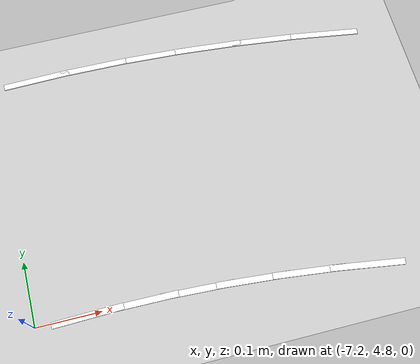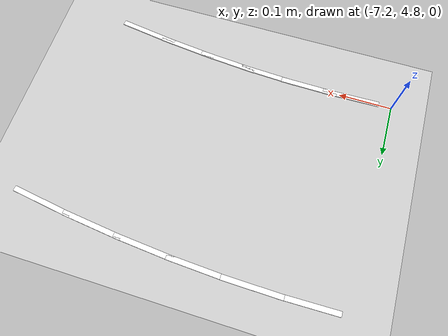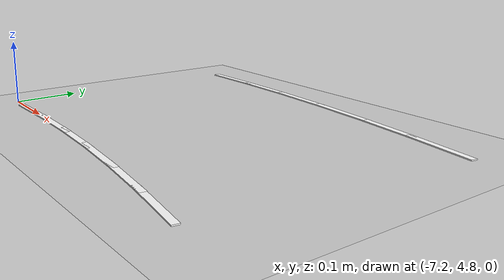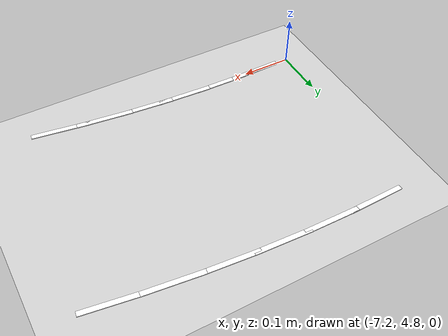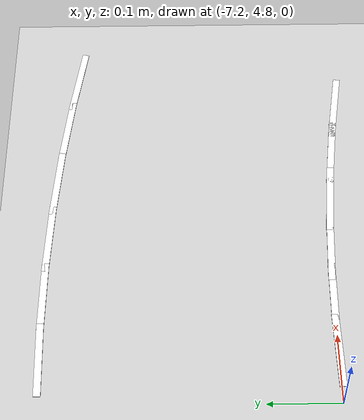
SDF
<sdf version="1.7">
 <world name="default">
  <model name="ground_plane">
   <static>1</static>
   <link name="link">
    <collision name="collision">
     <geometry><plane><normal>0 0 1</normal><size>100 100</size></plane></geometry>
     <surface>
      <contact><collide_bitmask>65535</collide_bitmask></contact>
      <friction><ode><mu>100</mu><mu2>50</mu2></ode></friction>
     </surface>
    </collision>
    <visual name="visual">
     <cast_shadows>0</cast_shadows>
     <geometry><plane><normal>0 0 1</normal><size>100 100</size></plane></geometry>
     <material>
      <script><uri>file://media/materials/scripts/gazebo.material</uri><name>Gazebo/Grey</name></script>
     </material>
    </visual>
   </link>
  </model>
  <model name="lane_line_left_307">
   <static>1</static>
   <link name="link">
    <pose>0 0 -0.004 0 -0 0</pose>
    <visual name="visual">
     <geometry><box><size>0.1148 0.01 0.01</size></box></geometry>
     <material><ambient>1 1 1 1</ambient><diffuse>1 1 1 1</diffuse></material>
    </visual>
    <collision name="collision"><geometry><box><size>0.1148 0.01 0.01</size></box></geometry></collision>
   </link>
   <pose>-6.70008 4.77143 0 0 -0 2.99506</pose>
  </model>
  <model name="lane_line_right_307">
   <static>1</static>
   <link name="link">
    <pose>0 0 -0.004 0 -0 0</pose>
    <visual name="visual">
     <geometry><box><size>0.1148 0.01 0.01</size></box></geometry>
     <material><ambient>1 1 1 1</ambient><diffuse>1 1 1 1</diffuse></material>
    </visual>
    <collision name="collision"><geometry><box><size>0.1148 0.01 0.01</size></box></geometry></collision>
   </link>
   <pose>-6.64167 5.16715 0 0 -0 2.99506</pose>
  </model>
  <model name="lane_line_left_308">
   <static>1</static>
   <link name="link">
    <pose>0 0 -0.004 0 -0 0</pose>
    <visual name="visual">
     <geometry><box><size>0.1134 0.01 0.01</size></box></geometry>
     <material><ambient>1 1 1 1</ambient><diffuse>1 1 1 1</diffuse></material>
    </visual>
    <collision name="collision"><geometry><box><size>0.1134 0.01 0.01</size></box></geometry></collision>
   </link>
   <pose>-6.78704 4.78287 0 0 -0 3.02684</pose>
  </model>
  <model name="lane_line_right_308">
   <static>1</static>
   <link name="link">
    <pose>0 0 -0.004 0 -0 0</pose>
    <visual name="visual">
     <geometry><box><size>0.1134 0.01 0.01</size></box></geometry>
     <material><ambient>1 1 1 1</ambient><diffuse>1 1 1 1</diffuse></material>
    </visual>
    <collision name="collision"><geometry><box><size>0.1134 0.01 0.01</size></box></geometry></collision>
   </link>
   <pose>-6.74124 5.18024 0 0 -0 3.02684</pose>
  </model>
  <model name="lane_line_left_309">
   <static>1</static>
   <link name="link">
    <pose>0 0 -0.004 0 -0 0</pose>
    <visual name="visual">
     <geometry><box><size>0.112 0.01 0.01</size></box></geometry>
     <material><ambient>1 1 1 1</ambient><diffuse>1 1 1 1</diffuse></material>
    </visual>
    <collision name="collision"><geometry><box><size>0.112 0.01 0.01</size></box></geometry></collision>
   </link>
   <pose>-6.87271 4.79133 0 0 -0 3.05966</pose>
  </model>
  <model name="lane_line_right_309">
   <static>1</static>
   <link name="link">
    <pose>0 0 -0.004 0 -0 0</pose>
    <visual name="visual">
     <geometry><box><size>0.112 0.01 0.01</size></box></geometry>
     <material><ambient>1 1 1 1</ambient><diffuse>1 1 1 1</diffuse></material>
    </visual>
    <collision name="collision"><geometry><box><size>0.112 0.01 0.01</size></box></geometry></collision>
   </link>
   <pose>-6.83997 5.18999 0 0 -0 3.05966</pose>
  </model>
  <model name="lane_line_left_310">
   <static>1</static>
   <link name="link">
    <pose>0 0 -0.004 0 -0 0</pose>
    <visual name="visual">
     <geometry><box><size>0.1107 0.01 0.01</size></box></geometry>
     <material><ambient>1 1 1 1</ambient><diffuse>1 1 1 1</diffuse></material>
    </visual>
    <collision name="collision"><geometry><box><size>0.1107 0.01 0.01</size></box></geometry></collision>
   </link>
   <pose>-6.95707 4.79684 0 0 -0 3.0935</pose>
  </model>
  <model name="lane_line_right_310">
   <static>1</static>
   <link name="link">
    <pose>0 0 -0.004 0 -0 0</pose>
    <visual name="visual">
     <geometry><box><size>0.1107 0.01 0.01</size></box></geometry>
     <material><ambient>1 1 1 1</ambient><diffuse>1 1 1 1</diffuse></material>
    </visual>
    <collision name="collision"><geometry><box><size>0.1107 0.01 0.01</size></box></geometry></collision>
   </link>
   <pose>-6.93784 5.19638 0 0 -0 3.0935</pose>
  </model>
  <model name="lane_line_left_311">
   <static>1</static>
   <link name="link">
    <pose>0 0 -0.004 0 -0 0</pose>
    <visual name="visual">
     <geometry><box><size>0.1095 0.01 0.01</size></box></geometry>
     <material><ambient>1 1 1 1</ambient><diffuse>1 1 1 1</diffuse></material>
    </visual>
    <collision name="collision"><geometry><box><size>0.1095 0.01 0.01</size></box></geometry></collision>
   </link>
   <pose>-7.04012 4.7994 0 0 -0 3.1283</pose>
  </model>
  <model name="lane_line_right_311">
   <static>1</static>
   <link name="link">
    <pose>0 0 -0.004 0 -0 0</pose>
    <visual name="visual">
     <geometry><box><size>0.1095 0.01 0.01</size></box></geometry>
     <material><ambient>1 1 1 1</ambient><diffuse>1 1 1 1</diffuse></material>
    </visual>
    <collision name="collision"><geometry><box><size>0.1095 0.01 0.01</size></box></geometry></collision>
   </link>
   <pose>-7.0348 5.19936 0 0 -0 3.1283</pose>
  </model>
  <model name="lane_line_left_312">
   <static>1</static>
   <link name="link">
    <pose>0 0 -0.004 0 -0 0</pose>
    <visual name="visual">
     <geometry><box><size>0.1084 0.01 0.01</size></box></geometry>
     <material><ambient>1 1 1 1</ambient><diffuse>1 1 1 1</diffuse></material>
    </visual>
    <collision name="collision"><geometry><box><size>0.1084 0.01 0.01</size></box></geometry></collision>
   </link>
   <pose>-7.12187 4.79903 0 0 0 -3.11916</pose>
  </model>
  <model name="lane_line_right_312">
   <static>1</static>
   <link name="link">
    <pose>0 0 -0.004 0 -0 0</pose>
    <visual name="visual">
     <geometry><box><size>0.1084 0.01 0.01</size></box></geometry>
     <material><ambient>1 1 1 1</ambient><diffuse>1 1 1 1</diffuse></material>
    </visual>
    <collision name="collision"><geometry><box><size>0.1084 0.01 0.01</size></box></geometry></collision>
   </link>
   <pose>-7.13084 5.19893 0 0 0 -3.11916</pose>
  </model>
 </world>
</sdf>
